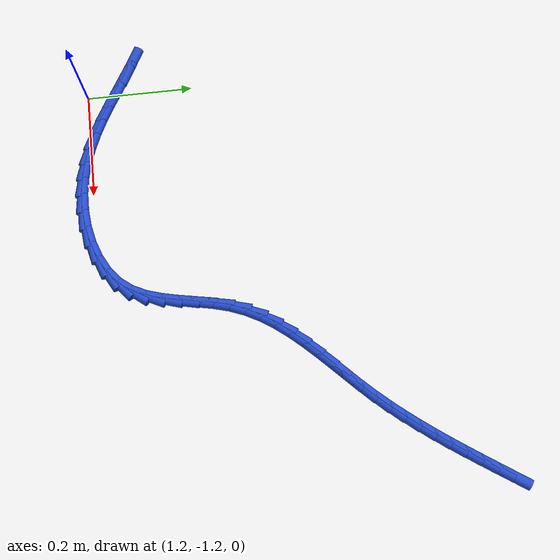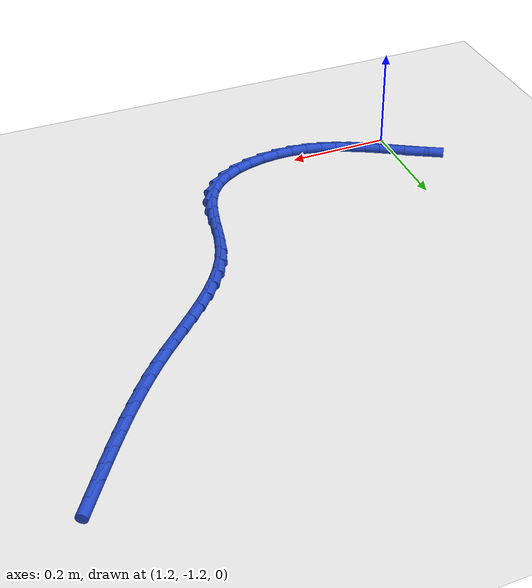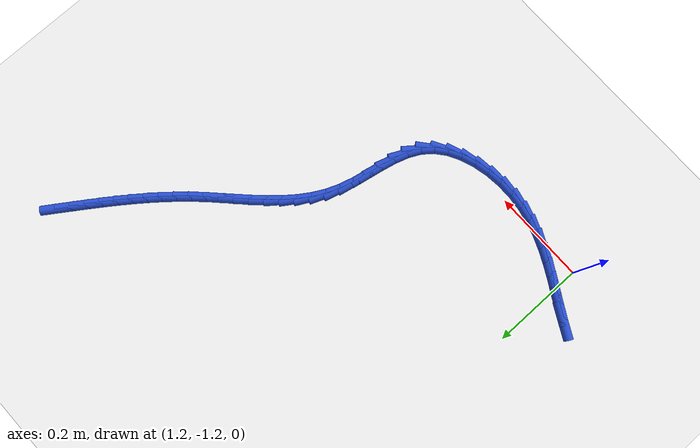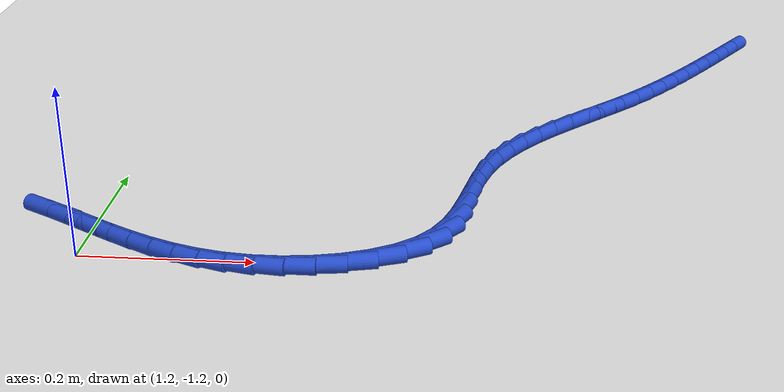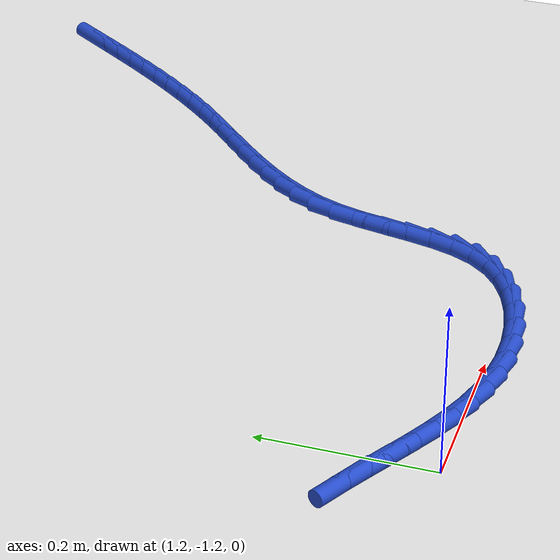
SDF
<sdf version="1.6">
 <world name="default">
  <model name="ground_plane">
   <static>1</static>
   <link name="link">
    <collision name="collision">
     <geometry><plane><normal>0 0 1</normal><size>100 100</size></plane></geometry>
     <surface><friction><ode><mu>100</mu><mu2>50</mu2></ode></friction></surface>
    </collision>
    <visual name="visual">
     <cast_shadows>0</cast_shadows>
     <geometry><plane><normal>0 0 1</normal><size>100 100</size></plane></geometry>
     <material>
      <script><uri>file://media/materials/scripts/gazebo.material</uri><name>Gazebo/WhiteGlow</name></script>
     </material>
    </visual>
   </link>
  </model>
  <model name="line">
   <link name="link_149">
    <pose>1.9953800616044084 -0.5086659450953861 0.01 0 1.57 0.981404169715763</pose>
    <collision name="collision">
     <geometry><cylinder><radius>0.01</radius><length>0.08</length></cylinder></geometry>
    </collision>
    <visual name="visual">
     <material>
      <script><name>Gazebo/Blue</name><uri>file://media/materials/scripts/gazebo.material</uri></script>
     </material>
     <geometry><cylinder><radius>0.01</radius><length>0.08</length></cylinder></geometry>
    </visual>
   </link>
   <link name="link_150">
    <pose>1.9783918375570266 -0.53407172104193 0.01 0 1.57 0.9768945301179419</pose>
    <collision name="collision">
     <geometry><cylinder><radius>0.01</radius><length>0.08</length></cylinder></geometry>
    </collision>
    <visual name="visual">
     <material>
      <script><name>Gazebo/Blue</name><uri>file://media/materials/scripts/gazebo.material</uri></script>
     </material>
     <geometry><cylinder><radius>0.01</radius><length>0.08</length></cylinder></geometry>
    </visual>
   </link>
   <link name="link_151">
    <pose>1.961411655326618 -0.5592192956706226 0.01 0 1.57 0.9686686069224723</pose>
    <collision name="collision">
     <geometry><cylinder><radius>0.01</radius><length>0.08</length></cylinder></geometry>
    </collision>
    <visual name="visual">
     <material>
      <script><name>Gazebo/Blue</name><uri>file://media/materials/scripts/gazebo.material</uri></script>
     </material>
     <geometry><cylinder><radius>0.01</radius><length>0.08</length></cylinder></geometry>
    </visual>
   </link>
   <link name="link_152">
    <pose>1.9443224125775547 -0.5840848773065366 0.01 0 1.57 0.9567021698799013</pose>
    <collision name="collision">
     <geometry><cylinder><radius>0.01</radius><length>0.08</length></cylinder></geometry>
    </collision>
    <visual name="visual">
     <material>
      <script><name>Gazebo/Blue</name><uri>file://media/materials/scripts/gazebo.material</uri></script>
     </material>
     <geometry><cylinder><radius>0.01</radius><length>0.08</length></cylinder></geometry>
    </visual>
   </link>
   <link name="link_153">
    <pose>1.9270070069742067 -0.6086446742747448 0.01 0 1.57 0.941010310574035</pose>
    <collision name="collision">
     <geometry><cylinder><radius>0.01</radius><length>0.08</length></cylinder></geometry>
    </collision>
    <visual name="visual">
     <material>
      <script><name>Gazebo/Blue</name><uri>file://media/materials/scripts/gazebo.material</uri></script>
     </material>
     <geometry><cylinder><radius>0.01</radius><length>0.08</length></cylinder></geometry>
    </visual>
   </link>
   <link name="link_154">
    <pose>1.909348336180947 -0.6328748949003203 0.01 0 1.57 0.9216528788590842</pose>
    <collision name="collision">
     <geometry><cylinder><radius>0.01</radius><length>0.08</length></cylinder></geometry>
    </collision>
    <visual name="visual">
     <material>
      <script><name>Gazebo/Blue</name><uri>file://media/materials/scripts/gazebo.material</uri></script>
     </material>
     <geometry><cylinder><radius>0.01</radius><length>0.08</length></cylinder></geometry>
    </visual>
   </link>
   <link name="link_155">
    <pose>1.8912292978621472 -0.6567517475083362 0.01 0 1.57 0.898740101900348</pose>
    <collision name="collision">
     <geometry><cylinder><radius>0.01</radius><length>0.08</length></cylinder></geometry>
    </collision>
    <visual name="visual">
     <material>
      <script><name>Gazebo/Blue</name><uri>file://media/materials/scripts/gazebo.material</uri></script>
     </material>
     <geometry><cylinder><radius>0.01</radius><length>0.08</length></cylinder></geometry>
    </visual>
   </link>
   <link name="link_156">
    <pose>1.8725327896821788 -0.6802514404238652 0.01 0 1.57 0.8724376788139562</pose>
    <collision name="collision">
     <geometry><cylinder><radius>0.01</radius><length>0.08</length></cylinder></geometry>
    </collision>
    <visual name="visual">
     <material>
      <script><name>Gazebo/Blue</name><uri>file://media/materials/scripts/gazebo.material</uri></script>
     </material>
     <geometry><cylinder><radius>0.01</radius><length>0.08</length></cylinder></geometry>
    </visual>
   </link>
   <link name="link_157">
    <pose>1.8531417093054126 -0.70335018197198 0.01 0 1.57 0.8429704474029103</pose>
    <collision name="collision">
     <geometry><cylinder><radius>0.01</radius><length>0.08</length></cylinder></geometry>
    </collision>
    <visual name="visual">
     <material>
      <script><name>Gazebo/Blue</name><uri>file://media/materials/scripts/gazebo.material</uri></script>
     </material>
     <geometry><cylinder><radius>0.01</radius><length>0.08</length></cylinder></geometry>
    </visual>
   </link>
   <link name="link_158">
    <pose>1.8329389543962213 -0.7260241804777539 0.01 0 1.57 0.8110695082250651</pose>
    <collision name="collision">
     <geometry><cylinder><radius>0.01</radius><length>0.08</length></cylinder></geometry>
    </collision>
    <visual name="visual">
     <material>
      <script><name>Gazebo/Blue</name><uri>file://media/materials/scripts/gazebo.material</uri></script>
     </material>
     <geometry><cylinder><radius>0.01</radius><length>0.08</length></cylinder></geometry>
    </visual>
   </link>
   <link name="link_159">
    <pose>1.8118203464780018 -0.7482558939750121 0.01 0 1.57 0.7865463507838181</pose>
    <collision name="collision">
     <geometry><cylinder><radius>0.01</radius><length>0.08</length></cylinder></geometry>
    </collision>
    <visual name="visual">
     <material>
      <script><name>Gazebo/Blue</name><uri>file://media/materials/scripts/gazebo.material</uri></script>
     </material>
     <geometry><cylinder><radius>0.01</radius><length>0.08</length></cylinder></geometry>
    </visual>
   </link>
   <link name="link_160">
    <pose>1.7899627866175285 -0.7701637047040386 0.01 0 1.57 0.7782765274343971</pose>
    <collision name="collision">
     <geometry><cylinder><radius>0.01</radius><length>0.08</length></cylinder></geometry>
    </collision>
    <visual name="visual">
     <material>
      <script><name>Gazebo/Blue</name><uri>file://media/materials/scripts/gazebo.material</uri></script>
     </material>
     <geometry><cylinder><radius>0.01</radius><length>0.08</length></cylinder></geometry>
    </visual>
   </link>
   <link name="link_161">
    <pose>1.7678155555998056 -0.7919977120575318 0.01 0 1.57 0.7862908990957178</pose>
    <collision name="collision">
     <geometry><cylinder><radius>0.01</radius><length>0.08</length></cylinder></geometry>
    </collision>
    <visual name="visual">
     <material>
      <script><name>Gazebo/Blue</name><uri>file://media/materials/scripts/gazebo.material</uri></script>
     </material>
     <geometry><cylinder><radius>0.01</radius><length>0.08</length></cylinder></geometry>
    </visual>
   </link>
   <link name="link_162">
    <pose>1.7458391175646344 -0.8140134234653877 0.01 0 1.57 0.8106847802023364</pose>
    <collision name="collision">
     <geometry><cylinder><radius>0.01</radius><length>0.08</length></cylinder></geometry>
    </collision>
    <visual name="visual">
     <material>
      <script><name>Gazebo/Blue</name><uri>file://media/materials/scripts/gazebo.material</uri></script>
     </material>
     <geometry><cylinder><radius>0.01</radius><length>0.08</length></cylinder></geometry>
    </visual>
   </link>
   <link name="link_163">
    <pose>1.724493936651816 -0.8364663463575042 0.01 0 1.57 0.8519412932904881</pose>
    <collision name="collision">
     <geometry><cylinder><radius>0.01</radius><length>0.08</length></cylinder></geometry>
    </collision>
    <visual name="visual">
     <material>
      <script><name>Gazebo/Blue</name><uri>file://media/materials/scripts/gazebo.material</uri></script>
     </material>
     <geometry><cylinder><radius>0.01</radius><length>0.08</length></cylinder></geometry>
    </visual>
   </link>
   <link name="link_164">
    <pose>1.7042404770011501 -0.8596119881637769 0.01 0 1.57 0.9107469896912581</pose>
    <collision name="collision">
     <geometry><cylinder><radius>0.01</radius><length>0.08</length></cylinder></geometry>
    </collision>
    <visual name="visual">
     <material>
      <script><name>Gazebo/Blue</name><uri>file://media/materials/scripts/gazebo.material</uri></script>
     </material>
     <geometry><cylinder><radius>0.01</radius><length>0.08</length></cylinder></geometry>
    </visual>
   </link>
   <link name="link_165">
    <pose>1.6855392027524394 -0.8837058563141035 0.01 0 1.57 0.9876379194574865</pose>
    <collision name="collision">
     <geometry><cylinder><radius>0.01</radius><length>0.08</length></cylinder></geometry>
    </collision>
    <visual name="visual">
     <material>
      <script><name>Gazebo/Blue</name><uri>file://media/materials/scripts/gazebo.material</uri></script>
     </material>
     <geometry><cylinder><radius>0.01</radius><length>0.08</length></cylinder></geometry>
    </visual>
   </link>
   <link name="link_166">
    <pose>1.6688505780454834 -0.9090034582383798 0.01 0 1.57 1.0824350325300043</pose>
    <collision name="collision">
     <geometry><cylinder><radius>0.01</radius><length>0.08</length></cylinder></geometry>
    </collision>
    <visual name="visual">
     <material>
      <script><name>Gazebo/Blue</name><uri>file://media/materials/scripts/gazebo.material</uri></script>
     </material>
     <geometry><cylinder><radius>0.01</radius><length>0.08</length></cylinder></geometry>
    </visual>
   </link>
   <link name="link_167">
    <pose>1.6546350670200842 -0.935760301366503 0.01 0 1.57 1.1935157179904283</pose>
    <collision name="collision">
     <geometry><cylinder><radius>0.01</radius><length>0.08</length></cylinder></geometry>
    </collision>
    <visual name="visual">
     <material>
      <script><name>Gazebo/Blue</name><uri>file://media/materials/scripts/gazebo.material</uri></script>
     </material>
     <geometry><cylinder><radius>0.01</radius><length>0.08</length></cylinder></geometry>
    </visual>
   </link>
   <link name="link_168">
    <pose>1.6433528915610034 -0.9642317402842274 0.01 0 1.57 1.3029631735349376</pose>
    <collision name="collision">
     <geometry><cylinder><radius>0.01</radius><length>0.08</length></cylinder></geometry>
    </collision>
    <visual name="visual">
     <material>
      <script><name>Gazebo/Blue</name><uri>file://media/materials/scripts/gazebo.material</uri></script>
     </material>
     <geometry><cylinder><radius>0.01</radius><length>0.08</length></cylinder></geometry>
    </visual>
   </link>
   <link name="link_169">
    <pose>1.6350676357794034 -0.9944228819017832 0.01 0 1.57 1.3673032215024685</pose>
    <collision name="collision">
     <geometry><cylinder><radius>0.01</radius><length>0.08</length></cylinder></geometry>
    </collision>
    <visual name="visual">
     <material>
      <script><name>Gazebo/Blue</name><uri>file://media/materials/scripts/gazebo.material</uri></script>
     </material>
     <geometry><cylinder><radius>0.01</radius><length>0.08</length></cylinder></geometry>
    </visual>
   </link>
   <link name="link_170">
    <pose>1.6286385900434612 -1.0255790171716417 0.01 0 1.57 1.382758115341105</pose>
    <collision name="collision">
     <geometry><cylinder><radius>0.01</radius><length>0.08</length></cylinder></geometry>
    </collision>
    <visual name="visual">
     <material>
      <script><name>Gazebo/Blue</name><uri>file://media/materials/scripts/gazebo.material</uri></script>
     </material>
     <geometry><cylinder><radius>0.01</radius><length>0.08</length></cylinder></geometry>
    </visual>
   </link>
   <link name="link_171">
    <pose>1.6226973300177747 -1.056801766727797 0.01 0 1.57 1.3499853267661504</pose>
    <collision name="collision">
     <geometry><cylinder><radius>0.01</radius><length>0.08</length></cylinder></geometry>
    </collision>
    <visual name="visual">
     <material>
      <script><name>Gazebo/Blue</name><uri>file://media/materials/scripts/gazebo.material</uri></script>
     </material>
     <geometry><cylinder><radius>0.01</radius><length>0.08</length></cylinder></geometry>
    </visual>
   </link>
   <link name="link_172">
    <pose>1.6158754313669423 -1.0871927512042436 0.01 0 1.57 1.2642776522705648</pose>
    <collision name="collision">
     <geometry><cylinder><radius>0.01</radius><length>0.08</length></cylinder></geometry>
    </collision>
    <visual name="visual">
     <material>
      <script><name>Gazebo/Blue</name><uri>file://media/materials/scripts/gazebo.material</uri></script>
     </material>
     <geometry><cylinder><radius>0.01</radius><length>0.08</length></cylinder></geometry>
    </visual>
   </link>
   <link name="link_173">
    <pose>1.6068044697555626 -1.1158535912349765 0.01 0 1.57 1.117270182430914</pose>
    <collision name="collision">
     <geometry><cylinder><radius>0.01</radius><length>0.08</length></cylinder></geometry>
    </collision>
    <visual name="visual">
     <material>
      <script><name>Gazebo/Blue</name><uri>file://media/materials/scripts/gazebo.material</uri></script>
     </material>
     <geometry><cylinder><radius>0.01</radius><length>0.08</length></cylinder></geometry>
    </visual>
   </link>
   <link name="link_174">
    <pose>1.594116020848233 -1.1418859074539887 0.01 0 1.57 0.9069247897540185</pose>
    <collision name="collision">
     <geometry><cylinder><radius>0.01</radius><length>0.08</length></cylinder></geometry>
    </collision>
    <visual name="visual">
     <material>
      <script><name>Gazebo/Blue</name><uri>file://media/materials/scripts/gazebo.material</uri></script>
     </material>
     <geometry><cylinder><radius>0.01</radius><length>0.08</length></cylinder></geometry>
    </visual>
   </link>
   <link name="link_175">
    <pose>1.576493194888068 -1.1644120665757505 0.01 0 1.57 0.6862301683994704</pose>
    <collision name="collision">
     <geometry><cylinder><radius>0.01</radius><length>0.08</length></cylinder></geometry>
    </collision>
    <visual name="visual">
     <material>
      <script><name>Gazebo/Blue</name><uri>file://media/materials/scripts/gazebo.material</uri></script>
     </material>
     <geometry><cylinder><radius>0.01</radius><length>0.08</length></cylinder></geometry>
    </visual>
   </link>
   <link name="link_176">
    <pose>1.5537741123491329 -1.1830194034175199 0.01 0 1.57 0.502065094430199</pose>
    <collision name="collision">
     <geometry><cylinder><radius>0.01</radius><length>0.08</length></cylinder></geometry>
    </collision>
    <visual name="visual">
     <material>
      <script><name>Gazebo/Blue</name><uri>file://media/materials/scripts/gazebo.material</uri></script>
     </material>
     <geometry><cylinder><radius>0.01</radius><length>0.08</length></cylinder></geometry>
    </visual>
   </link>
   <link name="link_177">
    <pose>1.5269353253017497 -1.1977535469010465 0.01 0 1.57 0.3499802244491858</pose>
    <collision name="collision">
     <geometry><cylinder><radius>0.01</radius><length>0.08</length></cylinder></geometry>
    </collision>
    <visual name="visual">
     <material>
      <script><name>Gazebo/Blue</name><uri>file://media/materials/scripts/gazebo.material</uri></script>
     </material>
     <geometry><cylinder><radius>0.01</radius><length>0.08</length></cylinder></geometry>
    </visual>
   </link>
   <link name="link_178">
    <pose>1.497001604450556 -1.2086795371414287 0.01 0 1.57 0.22077914318000838</pose>
    <collision name="collision">
     <geometry><cylinder><radius>0.01</radius><length>0.08</length></cylinder></geometry>
    </collision>
    <visual name="visual">
     <material>
      <script><name>Gazebo/Blue</name><uri>file://media/materials/scripts/gazebo.material</uri></script>
     </material>
     <geometry><cylinder><radius>0.01</radius><length>0.08</length></cylinder></geometry>
    </visual>
   </link>
   <link name="link_179">
    <pose>1.4649977205001885 -1.2158624142537664 0.01 0 1.57 0.10565294993330566</pose>
    <collision name="collision">
     <geometry><cylinder><radius>0.01</radius><length>0.08</length></cylinder></geometry>
    </collision>
    <visual name="visual">
     <material>
      <script><name>Gazebo/Blue</name><uri>file://media/materials/scripts/gazebo.material</uri></script>
     </material>
     <geometry><cylinder><radius>0.01</radius><length>0.08</length></cylinder></geometry>
    </visual>
   </link>
   <link name="link_180">
    <pose>1.4319484441552837 -1.2193672183531585 0.01 0 1.57 -0.0032727168356597234</pose>
    <collision name="collision">
     <geometry><cylinder><radius>0.01</radius><length>0.08</length></cylinder></geometry>
    </collision>
    <visual name="visual">
     <material>
      <script><name>Gazebo/Blue</name><uri>file://media/materials/scripts/gazebo.material</uri></script>
     </material>
     <geometry><cylinder><radius>0.01</radius><length>0.08</length></cylinder></geometry>
    </visual>
   </link>
   <link name="link_181">
    <pose>1.3988785461204782 -1.219258989554705 0.01 0 1.57 -0.11316380475585207</pose>
    <collision name="collision">
     <geometry><cylinder><radius>0.01</radius><length>0.08</length></cylinder></geometry>
    </collision>
    <visual name="visual">
     <material>
      <script><name>Gazebo/Blue</name><uri>file://media/materials/scripts/gazebo.material</uri></script>
     </material>
     <geometry><cylinder><radius>0.01</radius><length>0.08</length></cylinder></geometry>
    </visual>
   </link>
   <link name="link_182">
    <pose>1.3667886771454236 -1.2156119967267986 0.01 0 1.57 -0.2209382700463168</pose>
    <collision name="collision">
     <geometry><cylinder><radius>0.01</radius><length>0.08</length></cylinder></geometry>
    </collision>
    <visual name="visual">
     <material>
      <script><name>Gazebo/Blue</name><uri>file://media/materials/scripts/gazebo.material</uri></script>
     </material>
     <geometry><cylinder><radius>0.01</radius><length>0.08</length></cylinder></geometry>
    </visual>
   </link>
   <link name="link_183">
    <pose>1.3361050390886848 -1.208720303803747 0.01 0 1.57 -0.3158073733705313</pose>
    <collision name="collision">
     <geometry><cylinder><radius>0.01</radius><length>0.08</length></cylinder></geometry>
    </collision>
    <visual name="visual">
     <material>
      <script><name>Gazebo/Blue</name><uri>file://media/materials/scripts/gazebo.material</uri></script>
     </material>
     <geometry><cylinder><radius>0.01</radius><length>0.08</length></cylinder></geometry>
    </visual>
   </link>
   <link name="link_184">
    <pose>1.3066682283499587 -1.1991020385006885 0.01 0 1.57 -0.3945930069512718</pose>
    <collision name="collision">
     <geometry><cylinder><radius>0.01</radius><length>0.08</length></cylinder></geometry>
    </collision>
    <visual name="visual">
     <material>
      <script><name>Gazebo/Blue</name><uri>file://media/materials/scripts/gazebo.material</uri></script>
     </material>
     <geometry><cylinder><radius>0.01</radius><length>0.08</length></cylinder></geometry>
    </visual>
   </link>
   <link name="link_185">
    <pose>1.2782924898015957 -1.187285411128064 0.01 0 1.57 -0.45595493676069443</pose>
    <collision name="collision">
     <geometry><cylinder><radius>0.01</radius><length>0.08</length></cylinder></geometry>
    </collision>
    <visual name="visual">
     <material>
      <script><name>Gazebo/Blue</name><uri>file://media/materials/scripts/gazebo.material</uri></script>
     </material>
     <geometry><cylinder><radius>0.01</radius><length>0.08</length></cylinder></geometry>
    </visual>
   </link>
   <link name="link_186">
    <pose>1.2507920683159461 -1.1737986319963136 0.01 0 1.57 -0.4994793847887836</pose>
    <collision name="collision">
     <geometry><cylinder><radius>0.01</radius><length>0.08</length></cylinder></geometry>
    </collision>
    <visual name="visual">
     <material>
      <script><name>Gazebo/Blue</name><uri>file://media/materials/scripts/gazebo.material</uri></script>
     </material>
     <geometry><cylinder><radius>0.01</radius><length>0.08</length></cylinder></geometry>
    </visual>
   </link>
   <link name="link_187">
    <pose>1.2239812087653597 -1.159169911415876 0.01 0 1.57 -0.5251388460141028</pose>
    <collision name="collision">
     <geometry><cylinder><radius>0.01</radius><length>0.08</length></cylinder></geometry>
    </collision>
    <visual name="visual">
     <material>
      <script><name>Gazebo/Blue</name><uri>file://media/materials/scripts/gazebo.material</uri></script>
     </material>
     <geometry><cylinder><radius>0.01</radius><length>0.08</length></cylinder></geometry>
    </visual>
   </link>
   <link name="link_188">
    <pose>1.1976741560221875 -1.143927459697193 0.01 0 1.57 -0.5328760261096727</pose>
    <collision name="collision">
     <geometry><cylinder><radius>0.01</radius><length>0.08</length></cylinder></geometry>
    </collision>
    <visual name="visual">
     <material>
      <script><name>Gazebo/Blue</name><uri>file://media/materials/scripts/gazebo.material</uri></script>
     </material>
     <geometry><cylinder><radius>0.01</radius><length>0.08</length></cylinder></geometry>
    </visual>
   </link>
   <link name="link_189">
    <pose>1.1716851549587801 -1.1285994871507037 0.01 0 1.57 -0.5223591606520792</pose>
    <collision name="collision">
     <geometry><cylinder><radius>0.01</radius><length>0.08</length></cylinder></geometry>
    </collision>
    <visual name="visual">
     <material>
      <script><name>Gazebo/Blue</name><uri>file://media/materials/scripts/gazebo.material</uri></script>
     </material>
     <geometry><cylinder><radius>0.01</radius><length>0.08</length></cylinder></geometry>
    </visual>
   </link>
   <link name="link_190">
    <pose>1.145828491127695 -1.1137138411943666 0.01 0 1.57 -0.49655152418020215</pose>
    <collision name="collision">
     <geometry><cylinder><radius>0.01</radius><length>0.08</length></cylinder></geometry>
    </collision>
    <visual name="visual">
     <material>
      <script><name>Gazebo/Blue</name><uri>file://media/materials/scripts/gazebo.material</uri></script>
     </material>
     <geometry><cylinder><radius>0.01</radius><length>0.08</length></cylinder></geometry>
    </visual>
   </link>
  </model>
 </world>
</sdf>
